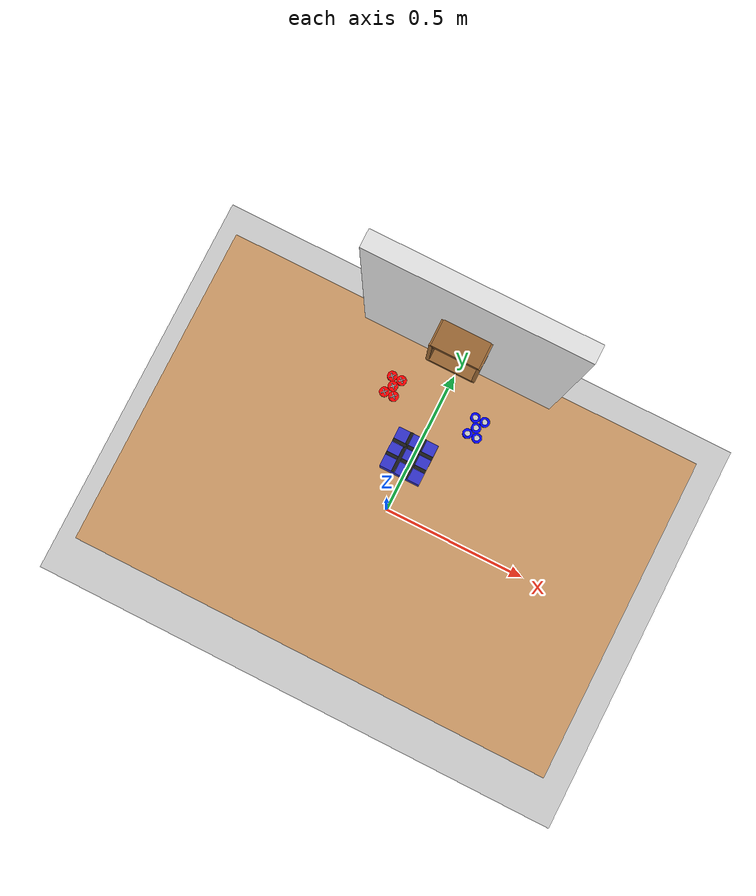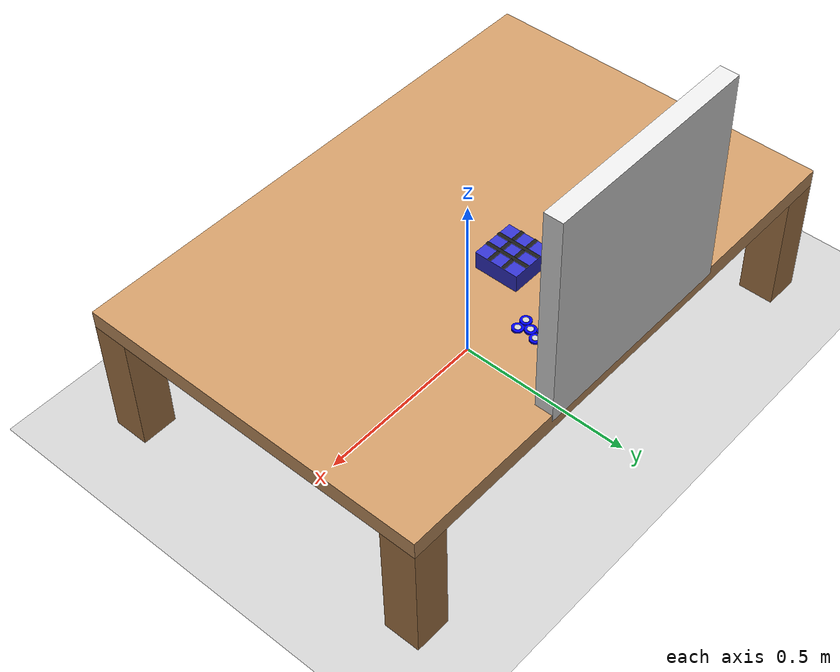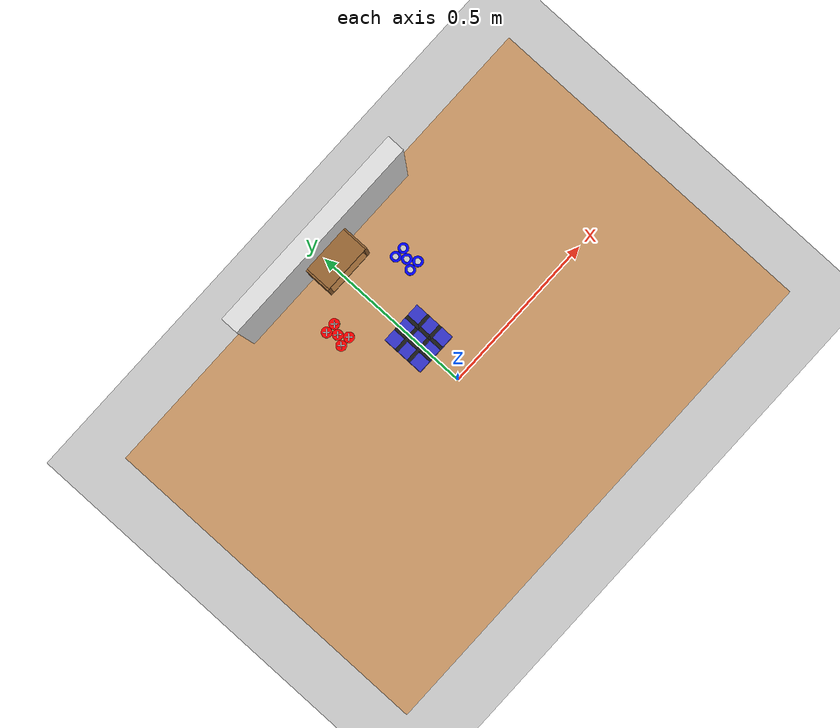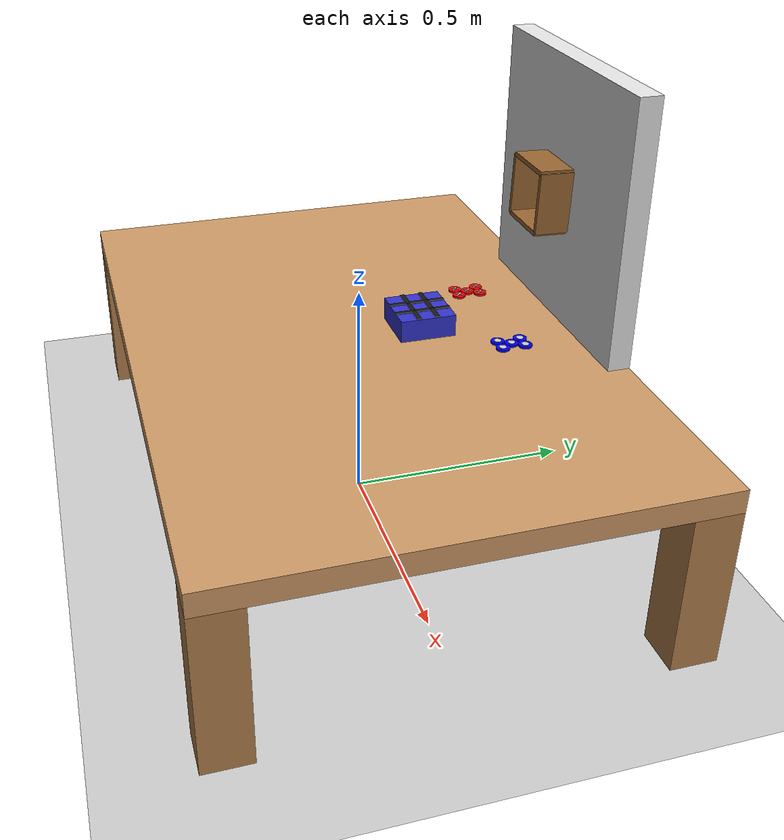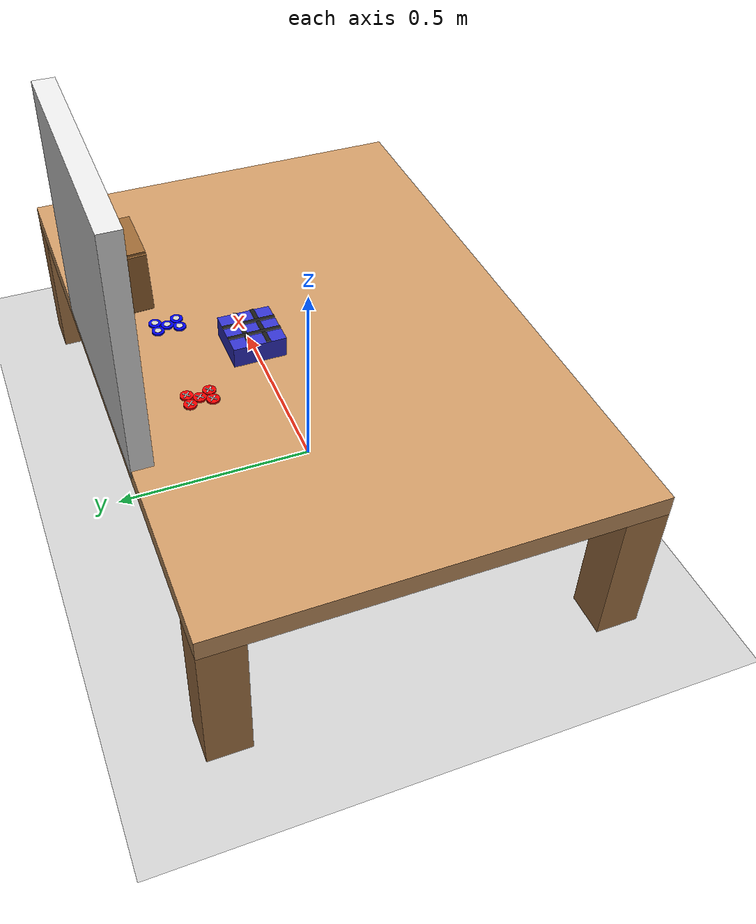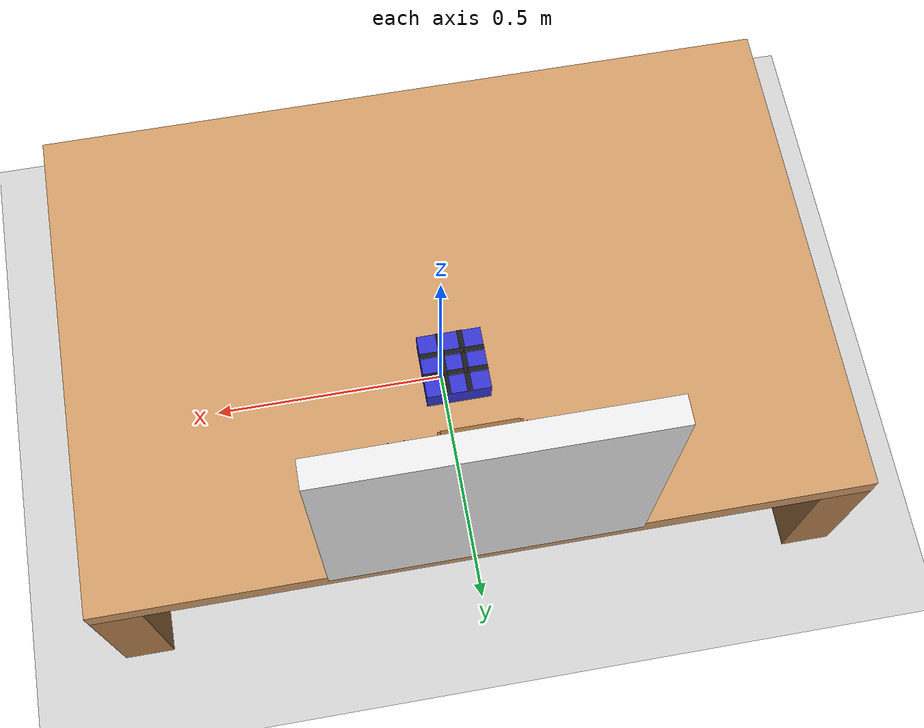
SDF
<sdf version="1.10">
 <world name="WORKINGPROTO">
  <physics name="1ms" type="ignored">
   <max_step_size>0.001</max_step_size>
   <real_time_factor>1</real_time_factor>
   <real_time_update_rate>1000</real_time_update_rate>
  </physics>
  <plugin name="gz::sim::systems::Physics" filename="gz-sim-physics-system"/>
  <plugin name="gz::sim::systems::UserCommands" filename="gz-sim-user-commands-system"/>
  <plugin name="gz::sim::systems::SceneBroadcaster" filename="gz-sim-scene-broadcaster-system"/>
  <gravity>0 0 -9.8000000000000007</gravity>
  <magnetic_field>5.5644999999999998e-06 2.2875799999999999e-05 -4.2388400000000002e-05</magnetic_field>
  <atmosphere type="adiabatic"/>
  <scene>
   <ambient>0.400000006 0.400000006 0.400000006 1</ambient>
   <background>0.699999988 0.699999988 0.699999988 1</background>
   <shadows>true</shadows>
  </scene>
  <model name="ground_plane">
   <static>true</static>
   <link name="link">
    <collision name="collision">
     <geometry><plane><normal>0 0 1</normal><size>100 100</size></plane></geometry>
     <surface>
      <contact><collide_bitmask>65535</collide_bitmask><ode><mu>100</mu><mu2>50</mu2></ode></contact>
      <friction><ode><mu>100</mu><mu2>50</mu2></ode></friction>
     </surface>
    </collision>
    <visual name="visual">
     <cast_shadows>false</cast_shadows>
     <geometry><plane><normal>0 0 1</normal><size>100 100</size></plane></geometry>
     <material>
      <ambient>0.800000012 0.800000012 0.800000012 1</ambient>
      <diffuse>0.800000012 0.800000012 0.800000012 1</diffuse>
      <specular>0 0 0 1</specular>
     </material>
    </visual>
    <inertial>
     <mass>1</mass>
     <inertia><ixx>1</ixx><ixy>0</ixy><ixz>0</ixz><iyy>1</iyy><iyz>0</iyz><izz>1</izz></inertia>
    </inertial>
   </link>
  </model>
  <model name="study_table">
   <static>true</static>
   <link name="table_link">
    <inertial>
     <mass>50</mass>
     <inertia><ixx>10</ixx><iyy>8</iyy><izz>6</izz><ixy>0</ixy><ixz>0</ixz><iyz>0</iyz></inertia>
    </inertial>
    <visual name="table_top">
     <pose>0 0 0.375 0 0 0</pose>
     <geometry><box><size>1.5 1 0.050000000000000003</size></box></geometry>
     <material>
      <ambient>0.800000012 0.600000024 0.400000006 1</ambient>
      <diffuse>0.800000012 0.600000024 0.400000006 1</diffuse>
     </material>
    </visual>
    <visual name="table_leg1">
     <pose>0.69999999999999996 0.45000000000000001 0.17499999999999999 0 0 0</pose>
     <geometry><box><size>0.10000000000000001 0.10000000000000001 0.34999999999999998</size></box></geometry>
     <material>
      <ambient>0.699999988 0.5 0.300000012 1</ambient>
      <diffuse>0.699999988 0.5 0.300000012 1</diffuse>
     </material>
    </visual>
    <visual name="table_leg2">
     <pose>-0.69999999999999996 0.45000000000000001 0.17499999999999999 0 0 0</pose>
     <geometry><box><size>0.10000000000000001 0.10000000000000001 0.34999999999999998</size></box></geometry>
     <material>
      <ambient>0.699999988 0.5 0.300000012 1</ambient>
      <diffuse>0.699999988 0.5 0.300000012 1</diffuse>
     </material>
    </visual>
    <visual name="table_leg3">
     <pose>0.69999999999999996 -0.45000000000000001 0.17499999999999999 0 0 0</pose>
     <geometry><box><size>0.10000000000000001 0.10000000000000001 0.34999999999999998</size></box></geometry>
     <material>
      <ambient>0.699999988 0.5 0.300000012 1</ambient>
      <diffuse>0.699999988 0.5 0.300000012 1</diffuse>
     </material>
    </visual>
    <visual name="table_leg4">
     <pose>-0.69999999999999996 -0.45000000000000001 0.17499999999999999 0 0 0</pose>
     <geometry><box><size>0.10000000000000001 0.10000000000000001 0.34999999999999998</size></box></geometry>
     <material>
      <ambient>0.699999988 0.5 0.300000012 1</ambient>
      <diffuse>0.699999988 0.5 0.300000012 1</diffuse>
     </material>
    </visual>
    <collision name="table_collision">
     <pose>0 0 0.375 0 0 0</pose>
     <geometry><box><size>1.5 1 0.050000000000000003</size></box></geometry>
    </collision>
   </link>
  </model>
  <model name="wall">
   <static>true</static>
   <pose>0 0.47631585597991943 0.68000000715255737 0 0 0</pose>
   <link name="wall_link">
    <inertial>
     <mass>20000000</mass>
     <inertia>
      <ixx>1.6699999999999999</ixx>
      <iyy>2.6699999999999999</iyy>
      <izz>1.0700000000000001</izz>
      <ixy>0</ixy>
      <ixz>0</ixz>
      <iyz>0</iyz>
     </inertia>
    </inertial>
    <visual name="wall_visual">
     <geometry><box><size>0.59999999999999998 0.050000000000000003 0.59999999999999998</size></box></geometry>
     <material>
      <ambient>0.899999976 0.899999976 0.899999976 1</ambient>
      <diffuse>0.899999976 0.899999976 0.899999976 1</diffuse>
     </material>
    </visual>
    <collision name="wall_collision">
     <geometry><box><size>0.59999999999999998 0.050000000000000003 0.59999999999999998</size></box></geometry>
    </collision>
   </link>
  </model>
  <model name="tictactoe_game">
   <static>true</static>
   <pose>0 0.139512 0.42499999999999999 0 0 0</pose>
   <link name="board">
    <inertial>
     <mass>2</mass>
     <inertia>
      <ixx>0.10000000000000001</ixx>
      <iyy>0.10000000000000001</iyy>
      <izz>0.10000000000000001</izz>
      <ixy>0</ixy>
      <ixz>0</ixz>
      <iyz>0</iyz>
     </inertia>
    </inertial>
    <visual name="board_visual">
     <geometry><box><size>0.125 0.125 0.050000000000000003</size></box></geometry>
     <material>
      <ambient>0.200000003 0.200000003 0.800000012 1</ambient>
      <diffuse>0.200000003 0.200000003 0.800000012 1</diffuse>
     </material>
    </visual>
    <visual name="grid_line1">
     <pose>-0.020833330000000001 0 0.025999999999999999 0 0 0</pose>
     <geometry><box><size>0.01 0.125 0.002</size></box></geometry>
     <material>
      <ambient>0.100000001 0.100000001 0.100000001 1</ambient>
      <diffuse>0.100000001 0.100000001 0.100000001 1</diffuse>
     </material>
    </visual>
    <visual name="grid_line2">
     <pose>0.020833330000000001 0 0.025999999999999999 0 0 0</pose>
     <geometry><box><size>0.01 0.125 0.002</size></box></geometry>
     <material>
      <ambient>0.100000001 0.100000001 0.100000001 1</ambient>
      <diffuse>0.100000001 0.100000001 0.100000001 1</diffuse>
     </material>
    </visual>
    <visual name="grid_line3">
     <pose>0 -0.020833330000000001 0.025999999999999999 0 0 0</pose>
     <geometry><box><size>0.125 0.01 0.002</size></box></geometry>
     <material>
      <ambient>0.100000001 0.100000001 0.100000001 1</ambient>
      <diffuse>0.100000001 0.100000001 0.100000001 1</diffuse>
     </material>
    </visual>
    <visual name="grid_line4">
     <pose>0 0.020833330000000001 0.025999999999999999 0 0 0</pose>
     <geometry><box><size>0.125 0.01 0.002</size></box></geometry>
     <material>
      <ambient>0.100000001 0.100000001 0.100000001 1</ambient>
      <diffuse>0.100000001 0.100000001 0.100000001 1</diffuse>
     </material>
    </visual>
    <collision name="board_collision">
     <geometry><box><size>0.125 0.125 0.050000000000000003</size></box></geometry>
    </collision>
   </link>
  </model>
  <model name="o_piece_1">
   <static>false</static>
   <pose>0.15006300002628756 0.33094400254841272 0.40249999997945896 -5.4473707310809546e-08 2.2799730565017562e-08 3.8099215434709207e-06</pose>
   <link name="o_link">
    <inertial>
     <mass>0.050000000000000003</mass>
     <inertia><ixx>0.001</ixx><iyy>0.001</iyy><izz>0.001</izz><ixy>0</ixy><ixz>0</ixz><iyz>0</iyz></inertia>
    </inertial>
    <visual name="o_visual">
     <geometry>
      <cylinder><radius>0.014999999999999999</radius><length>0.0050000000000000001</length></cylinder>
     </geometry>
     <material><ambient>0 0 1 1</ambient><diffuse>0 0 1 1</diffuse></material>
    </visual>
    <visual name="o_ring">
     <pose>0 0 0.0030000000000000001 0 0 0</pose>
     <geometry><cylinder><radius>0.0080000000000000002</radius><length>0.001</length></cylinder></geometry>
     <material>
      <ambient>0.800000012 0.800000012 0.800000012 1</ambient>
      <diffuse>0.800000012 0.800000012 0.800000012 1</diffuse>
     </material>
    </visual>
    <collision name="o_collision">
     <geometry>
      <cylinder><radius>0.014999999999999999</radius><length>0.0050000000000000001</length></cylinder>
     </geometry>
    </collision>
   </link>
  </model>
  <model name="o_piece_2">
   <static>false</static>
   <pose>0.11993599997876436 0.33094300665682791 0.40249999996009656 -4.521221188377443e-08 -1.8601743793069359e-08 1.1592680037446354e-07</pose>
   <link name="o_link">
    <inertial>
     <mass>0.050000000000000003</mass>
     <inertia><ixx>0.001</ixx><iyy>0.001</iyy><izz>0.001</izz><ixy>0</ixy><ixz>0</ixz><iyz>0</iyz></inertia>
    </inertial>
    <visual name="o_visual">
     <geometry>
      <cylinder><radius>0.014999999999999999</radius><length>0.0050000000000000001</length></cylinder>
     </geometry>
     <material><ambient>0 0 1 1</ambient><diffuse>0 0 1 1</diffuse></material>
    </visual>
    <visual name="o_ring">
     <pose>0 0 0.0030000000000000001 0 0 0</pose>
     <geometry><cylinder><radius>0.0080000000000000002</radius><length>0.001</length></cylinder></geometry>
     <material>
      <ambient>0.800000012 0.800000012 0.800000012 1</ambient>
      <diffuse>0.800000012 0.800000012 0.800000012 1</diffuse>
     </material>
    </visual>
    <collision name="o_collision">
     <geometry>
      <cylinder><radius>0.014999999999999999</radius><length>0.0050000000000000001</length></cylinder>
     </geometry>
    </collision>
   </link>
  </model>
  <model name="o_piece_3">
   <static>false</static>
   <pose>0.15006200002717973 0.27905599478305382 0.40249999997953873 5.4487971965517728e-08 2.2821550742788705e-08 -2.1118667420361199e-06</pose>
   <link name="o_link">
    <inertial>
     <mass>0.050000000000000003</mass>
     <inertia><ixx>0.001</ixx><iyy>0.001</iyy><izz>0.001</izz><ixy>0</ixy><ixz>0</ixz><iyz>0</iyz></inertia>
    </inertial>
    <visual name="o_visual">
     <geometry>
      <cylinder><radius>0.014999999999999999</radius><length>0.0050000000000000001</length></cylinder>
     </geometry>
     <material><ambient>0 0 1 1</ambient><diffuse>0 0 1 1</diffuse></material>
    </visual>
    <visual name="o_ring">
     <pose>0 0 0.0030000000000000001 0 0 0</pose>
     <geometry><cylinder><radius>0.0080000000000000002</radius><length>0.001</length></cylinder></geometry>
     <material>
      <ambient>0.800000012 0.800000012 0.800000012 1</ambient>
      <diffuse>0.800000012 0.800000012 0.800000012 1</diffuse>
     </material>
    </visual>
    <collision name="o_collision">
     <geometry>
      <cylinder><radius>0.014999999999999999</radius><length>0.0050000000000000001</length></cylinder>
     </geometry>
    </collision>
   </link>
  </model>
  <model name="o_piece_4">
   <static>false</static>
   <pose>0.1199359999849469 0.27905699323969102 0.40249999995841751 3.6146946088860766e-08 -1.4980675867703399e-08 1.7977947085897668e-06</pose>
   <link name="o_link">
    <inertial>
     <mass>0.050000000000000003</mass>
     <inertia><ixx>0.001</ixx><iyy>0.001</iyy><izz>0.001</izz><ixy>0</ixy><ixz>0</ixz><iyz>0</iyz></inertia>
    </inertial>
    <visual name="o_visual">
     <geometry>
      <cylinder><radius>0.014999999999999999</radius><length>0.0050000000000000001</length></cylinder>
     </geometry>
     <material><ambient>0 0 1 1</ambient><diffuse>0 0 1 1</diffuse></material>
    </visual>
    <visual name="o_ring">
     <pose>0 0 0.0030000000000000001 0 0 0</pose>
     <geometry><cylinder><radius>0.0080000000000000002</radius><length>0.001</length></cylinder></geometry>
     <material>
      <ambient>0.800000012 0.800000012 0.800000012 1</ambient>
      <diffuse>0.800000012 0.800000012 0.800000012 1</diffuse>
     </material>
    </visual>
    <collision name="o_collision">
     <geometry>
      <cylinder><radius>0.014999999999999999</radius><length>0.0050000000000000001</length></cylinder>
     </geometry>
    </collision>
   </link>
  </model>
  <model name="o_piece_5">
   <static>false</static>
   <pose>0.13500000118713076 0.30499999944631018 0.40249999887290705 4.043283491204184e-07 8.0560683703376272e-07 -1.8384626261003927e-06</pose>
   <link name="o_link">
    <inertial>
     <mass>0.050000000000000003</mass>
     <inertia><ixx>0.001</ixx><iyy>0.001</iyy><izz>0.001</izz><ixy>0</ixy><ixz>0</ixz><iyz>0</iyz></inertia>
    </inertial>
    <visual name="o_visual">
     <geometry>
      <cylinder><radius>0.014999999999999999</radius><length>0.0050000000000000001</length></cylinder>
     </geometry>
     <material><ambient>0 0 1 1</ambient><diffuse>0 0 1 1</diffuse></material>
    </visual>
    <visual name="o_ring">
     <pose>0 0 0.0030000000000000001 0 0 0</pose>
     <geometry><cylinder><radius>0.0080000000000000002</radius><length>0.001</length></cylinder></geometry>
     <material>
      <ambient>0.800000012 0.800000012 0.800000012 1</ambient>
      <diffuse>0.800000012 0.800000012 0.800000012 1</diffuse>
     </material>
    </visual>
    <collision name="o_collision">
     <geometry>
      <cylinder><radius>0.014999999999999999</radius><length>0.0050000000000000001</length></cylinder>
     </geometry>
    </collision>
   </link>
  </model>
  <model name="robot_box">
   <static>true</static>
   <pose>0 0.40969958901405334 0.68939310312271118 1.5400000109655501 0 0</pose>
   <link name="box_link">
    <inertial>
     <mass>5</mass>
     <inertia>
      <ixx>0.10000000000000001</ixx>
      <iyy>0.10000000000000001</iyy>
      <izz>0.10000000000000001</izz>
      <ixy>0</ixy>
      <ixz>0</ixz>
      <iyz>0</iyz>
     </inertia>
    </inertial>
    <visual name="front_wall">
     <pose>0.0675 0 0 0 0 0</pose>
     <geometry><box><size>0.01 0.135 0.074999999999999997</size></box></geometry>
     <material>
      <ambient>0.600000024 0.400000006 0.200000003 1</ambient>
      <diffuse>0.600000024 0.400000006 0.200000003 1</diffuse>
     </material>
    </visual>
    <collision name="front_wall_collision">
     <pose>0.0675 0 0 0 0 0</pose>
     <geometry><box><size>0.01 0.135 0.074999999999999997</size></box></geometry>
    </collision>
    <visual name="back_wall">
     <pose>-0.0675 0 0 0 0 0</pose>
     <geometry><box><size>0.01 0.135 0.074999999999999997</size></box></geometry>
     <material>
      <ambient>0.600000024 0.400000006 0.200000003 1</ambient>
      <diffuse>0.600000024 0.400000006 0.200000003 1</diffuse>
     </material>
    </visual>
    <collision name="back_wall_collision">
     <pose>-0.0675 0 0 0 0 0</pose>
     <geometry><box><size>0.01 0.135 0.074999999999999997</size></box></geometry>
    </collision>
    <visual name="left_wall">
     <pose>0 0.0675 0 0 0 0</pose>
     <geometry><box><size>0.135 0.01 0.074999999999999997</size></box></geometry>
     <material>
      <ambient>0.600000024 0.400000006 0.200000003 1</ambient>
      <diffuse>0.600000024 0.400000006 0.200000003 1</diffuse>
     </material>
    </visual>
    <collision name="left_wall_collision">
     <pose>0 0.0675 0 0 0 0</pose>
     <geometry><box><size>0.135 0.01 0.074999999999999997</size></box></geometry>
    </collision>
    <visual name="right_wall">
     <pose>0 -0.0675 0 0 0 0</pose>
     <geometry><box><size>0.135 0.01 0.074999999999999997</size></box></geometry>
     <material>
      <ambient>0.600000024 0.400000006 0.200000003 1</ambient>
      <diffuse>0.600000024 0.400000006 0.200000003 1</diffuse>
     </material>
    </visual>
    <collision name="right_wall_collision">
     <pose>0 -0.0675 0 0 0 0</pose>
     <geometry><box><size>0.135 0.01 0.074999999999999997</size></box></geometry>
    </collision>
   </link>
  </model>
  <model name="x_piece_1">
   <static>false</static>
   <pose>-0.15006200002637482 0.33094400836982751 0.40249999997949398 -5.4253263523866535e-08 -2.2626480285769346e-08 -5.9116126773537277e-07</pose>
   <link name="x_link">
    <inertial>
     <mass>0.050000000000000003</mass>
     <inertia><ixx>0.001</ixx><iyy>0.001</iyy><izz>0.001</izz><ixy>0</ixy><ixz>0</ixz><iyz>0</iyz></inertia>
    </inertial>
    <visual name="x_visual">
     <geometry>
      <cylinder><radius>0.014999999999999999</radius><length>0.0050000000000000001</length></cylinder>
     </geometry>
     <material><ambient>1 0 0 1</ambient><diffuse>1 0 0 1</diffuse></material>
    </visual>
    <visual name="x_cross1">
     <pose>0 0 0.0030000000000000001 0 0 0.78539799999999982</pose>
     <geometry><box><size>0.02 0.0030000000000000001 0.001</size></box></geometry>
     <material>
      <ambient>0.800000012 0.800000012 0.800000012 1</ambient>
      <diffuse>0.800000012 0.800000012 0.800000012 1</diffuse>
     </material>
    </visual>
    <visual name="x_cross2">
     <pose>0 0 0.0030000000000000001 0 0 -0.78539799999999982</pose>
     <geometry><box><size>0.02 0.0030000000000000001 0.001</size></box></geometry>
     <material>
      <ambient>0.800000012 0.800000012 0.800000012 1</ambient>
      <diffuse>0.800000012 0.800000012 0.800000012 1</diffuse>
     </material>
    </visual>
    <collision name="x_collision">
     <geometry>
      <cylinder><radius>0.014999999999999999</radius><length>0.0050000000000000001</length></cylinder>
     </geometry>
    </collision>
   </link>
  </model>
  <model name="x_piece_2">
   <static>false</static>
   <pose>-0.11993799997362507 0.3309440083698274 0.40249999997949393 -5.4254443553686898e-08 2.2623717852677582e-08 5.9115972810322237e-07</pose>
   <link name="x_link">
    <inertial>
     <mass>0.050000000000000003</mass>
     <inertia><ixx>0.001</ixx><iyy>0.001</iyy><izz>0.001</izz><ixy>0</ixy><ixz>0</ixz><iyz>0</iyz></inertia>
    </inertial>
    <visual name="x_visual">
     <geometry>
      <cylinder><radius>0.014999999999999999</radius><length>0.0050000000000000001</length></cylinder>
     </geometry>
     <material><ambient>1 0 0 1</ambient><diffuse>1 0 0 1</diffuse></material>
    </visual>
    <visual name="x_cross1">
     <pose>0 0 0.0030000000000000001 0 0 0.78539799999999982</pose>
     <geometry><box><size>0.02 0.0030000000000000001 0.001</size></box></geometry>
     <material>
      <ambient>0.800000012 0.800000012 0.800000012 1</ambient>
      <diffuse>0.800000012 0.800000012 0.800000012 1</diffuse>
     </material>
    </visual>
    <visual name="x_cross2">
     <pose>0 0 0.0030000000000000001 0 0 -0.78539799999999982</pose>
     <geometry><box><size>0.02 0.0030000000000000001 0.001</size></box></geometry>
     <material>
      <ambient>0.800000012 0.800000012 0.800000012 1</ambient>
      <diffuse>0.800000012 0.800000012 0.800000012 1</diffuse>
     </material>
    </visual>
    <collision name="x_collision">
     <geometry>
      <cylinder><radius>0.014999999999999999</radius><length>0.0050000000000000001</length></cylinder>
     </geometry>
    </collision>
   </link>
  </model>
  <model name="x_piece_3">
   <static>false</static>
   <pose>-0.1500620000263749 0.27905599163017258 0.40249999997949393 5.4254147940081106e-08 -2.2624309599111807e-08 5.9116084666717864e-07</pose>
   <link name="x_link">
    <inertial>
     <mass>0.050000000000000003</mass>
     <inertia><ixx>0.001</ixx><iyy>0.001</iyy><izz>0.001</izz><ixy>0</ixy><ixz>0</ixz><iyz>0</iyz></inertia>
    </inertial>
    <visual name="x_visual">
     <geometry>
      <cylinder><radius>0.014999999999999999</radius><length>0.0050000000000000001</length></cylinder>
     </geometry>
     <material><ambient>1 0 0 1</ambient><diffuse>1 0 0 1</diffuse></material>
    </visual>
    <visual name="x_cross1">
     <pose>0 0 0.0030000000000000001 0 0 0.78539799999999982</pose>
     <geometry><box><size>0.02 0.0030000000000000001 0.001</size></box></geometry>
     <material>
      <ambient>0.800000012 0.800000012 0.800000012 1</ambient>
      <diffuse>0.800000012 0.800000012 0.800000012 1</diffuse>
     </material>
    </visual>
    <visual name="x_cross2">
     <pose>0 0 0.0030000000000000001 0 0 -0.78539799999999982</pose>
     <geometry><box><size>0.02 0.0030000000000000001 0.001</size></box></geometry>
     <material>
      <ambient>0.800000012 0.800000012 0.800000012 1</ambient>
      <diffuse>0.800000012 0.800000012 0.800000012 1</diffuse>
     </material>
    </visual>
    <collision name="x_collision">
     <geometry>
      <cylinder><radius>0.014999999999999999</radius><length>0.0050000000000000001</length></cylinder>
     </geometry>
    </collision>
   </link>
  </model>
  <model name="x_piece_4">
   <static>false</static>
   <pose>-0.11993799997362517 0.27905599163017253 0.40249999997949393 5.4253459993034773e-08 2.262598692607858e-08 -5.9116117235470269e-07</pose>
   <link name="x_link">
    <inertial>
     <mass>0.050000000000000003</mass>
     <inertia><ixx>0.001</ixx><iyy>0.001</iyy><izz>0.001</izz><ixy>0</ixy><ixz>0</ixz><iyz>0</iyz></inertia>
    </inertial>
    <visual name="x_visual">
     <geometry>
      <cylinder><radius>0.014999999999999999</radius><length>0.0050000000000000001</length></cylinder>
     </geometry>
     <material><ambient>1 0 0 1</ambient><diffuse>1 0 0 1</diffuse></material>
    </visual>
    <visual name="x_cross1">
     <pose>0 0 0.0030000000000000001 0 0 0.78539799999999982</pose>
     <geometry><box><size>0.02 0.0030000000000000001 0.001</size></box></geometry>
     <material>
      <ambient>0.800000012 0.800000012 0.800000012 1</ambient>
      <diffuse>0.800000012 0.800000012 0.800000012 1</diffuse>
     </material>
    </visual>
    <visual name="x_cross2">
     <pose>0 0 0.0030000000000000001 0 0 -0.78539799999999982</pose>
     <geometry><box><size>0.02 0.0030000000000000001 0.001</size></box></geometry>
     <material>
      <ambient>0.800000012 0.800000012 0.800000012 1</ambient>
      <diffuse>0.800000012 0.800000012 0.800000012 1</diffuse>
     </material>
    </visual>
    <collision name="x_collision">
     <geometry>
      <cylinder><radius>0.014999999999999999</radius><length>0.0050000000000000001</length></cylinder>
     </geometry>
    </collision>
   </link>
  </model>
  <model name="x_piece_5">
   <static>false</static>
   <pose>-0.13500000000000001 0.30499999999999999 0.4024990099875379 -3.0716526170570661e-17 1.3724923186496164e-17 6.0216192334644961e-19</pose>
   <link name="x_link">
    <inertial>
     <mass>0.050000000000000003</mass>
     <inertia><ixx>0.001</ixx><iyy>0.001</iyy><izz>0.001</izz><ixy>0</ixy><ixz>0</ixz><iyz>0</iyz></inertia>
    </inertial>
    <visual name="x_visual">
     <geometry>
      <cylinder><radius>0.014999999999999999</radius><length>0.0050000000000000001</length></cylinder>
     </geometry>
     <material><ambient>1 0 0 1</ambient><diffuse>1 0 0 1</diffuse></material>
    </visual>
    <visual name="x_cross1">
     <pose>0 0 0.0030000000000000001 0 0 0.78539799999999982</pose>
     <geometry><box><size>0.02 0.0030000000000000001 0.001</size></box></geometry>
     <material>
      <ambient>0.800000012 0.800000012 0.800000012 1</ambient>
      <diffuse>0.800000012 0.800000012 0.800000012 1</diffuse>
     </material>
    </visual>
    <visual name="x_cross2">
     <pose>0 0 0.0030000000000000001 0 0 -0.78539799999999982</pose>
     <geometry><box><size>0.02 0.0030000000000000001 0.001</size></box></geometry>
     <material>
      <ambient>0.800000012 0.800000012 0.800000012 1</ambient>
      <diffuse>0.800000012 0.800000012 0.800000012 1</diffuse>
     </material>
    </visual>
    <collision name="x_collision">
     <geometry>
      <cylinder><radius>0.014999999999999999</radius><length>0.0050000000000000001</length></cylinder>
     </geometry>
    </collision>
   </link>
  </model>
  <light name="sun" type="directional">
   <pose>0 0 10 0 0 0</pose>
   <intensity>1</intensity>
   <direction>-0.5 0.10000000000000001 -0.90000000000000002</direction>
   <diffuse>0.800000012 0.800000012 0.800000012 1</diffuse>
   <specular>0.200000003 0.200000003 0.200000003 1</specular>
   <attenuation>
    <range>1000</range>
    <linear>0.0099999997764825821</linear>
    <constant>0.89999997615814209</constant>
    <quadratic>0.0010000000474974513</quadratic>
   </attenuation>
   <spot><inner_angle>0</inner_angle><outer_angle>0</outer_angle><falloff>0</falloff></spot>
  </light>
 </world>
</sdf>
